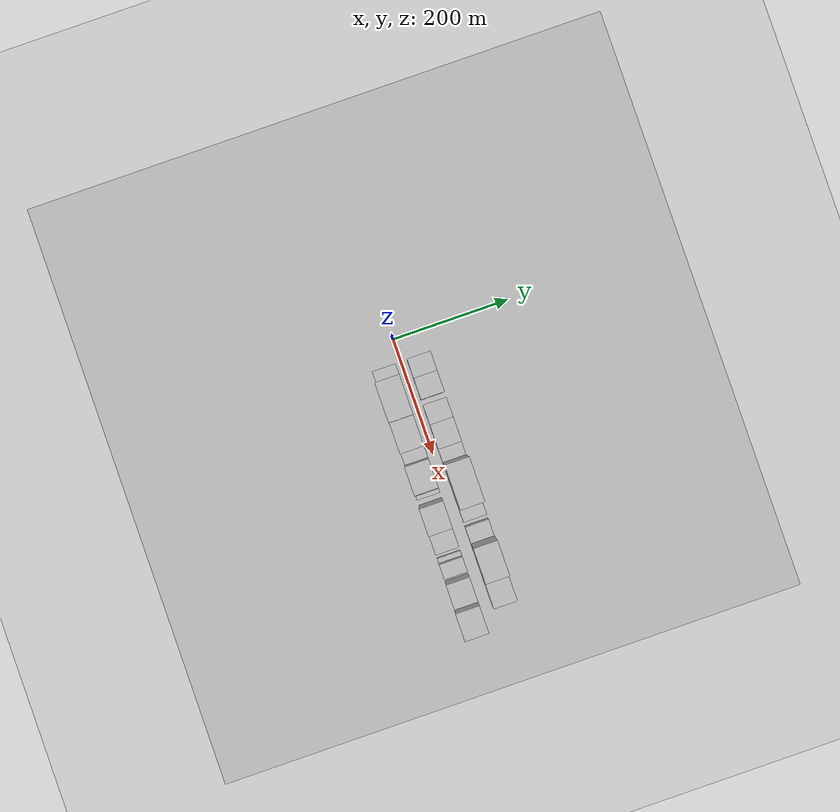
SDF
<?xml version="1.0" encoding="utf-8"?>

<sdf version="1.6">

   <world name="default">

      <gui fullscreen="0">

         <camera name="user_camera">

            <pose>-15 0 4.57585 0 0 0</pose>

            <view_controller>orbit</view_controller>

         </camera>

      </gui>

      <scene>

         <sky>

           <clouds>

             <speed>12</speed>

           </clouds>

         </sky>

         <ambient>0.4 0.4 0.4 1</ambient>

         <background>0.7 0.7 0.7 1</background>

         <shadows>1</shadows>

      </scene>

      <gravity>0 0 -9.8066</gravity>

      <magnetic_field>6e-06 2.3e-05 -4.2e-05</magnetic_field>

      <physics default="0" name="default_physics" type="ode">

         <ode>

            <solver>

               <type>quick</type>

               <iters>10</iters>

               <sor>1.0</sor>

               <use_dynamic_moi_rescaling>0</use_dynamic_moi_rescaling>

            </solver>

            <constraints>

               <cfm>0</cfm>

               <erp>0.2</erp>

               <contact_max_correcting_vel>100</contact_max_correcting_vel>

               <contact_surface_layer>0.001</contact_surface_layer>

            </constraints>

         </ode>

         <max_step_size>0.004</max_step_size>

         <real_time_factor>1</real_time_factor>

         <real_time_update_rate>250</real_time_update_rate>

      </physics>

      <light name="sun" type="directional">

         <cast_shadows>1</cast_shadows>

         <pose>0 0 10 0 0 0</pose>

         <diffuse>0.8 0.8 0.8 1</diffuse>

         <specular>0.2 0.2 0.2 1</specular>

         <attenuation>

            <range>1000</range>

            <constant>0.9</constant>

            <linear>0.01</linear>

            <quadratic>0.001</quadratic>

         </attenuation>

         <direction>-0.5 0.1 -0.9</direction>

      </light>

      <include>

         <name>ground_plane_1</name>

         <uri>model://HANNAS_ground_plane</uri>

         <pose>0 0 0  0 0 0</pose>

      </include>

      <include>

         <name>ground_plane_2</name>

         <uri>model://HANNAS_ground_plane</uri>

         <pose>100 0 0  0 0 0</pose>

      </include>

      <model name="building_1">

         <static>1</static>

         <pose frame="">56.5214 30.0000 0 0.000000 0.000000 1.570796</pose>

         <link name="link">

            <pose frame="">0 0 33.00 0 0 0</pose>

            <collision name="collision">

               <geometry>

                  <box>

                     <size>40.0000 33.0428 66.0000</size>

                  </box>

               </geometry>

               <max_contacts>10</max_contacts>

               <surface>

                  <contact>

                     <ode/>

                  </contact>

                  <bounce/>

                  <friction>

                     <torsional>

                        <ode/>

                     </torsional>

                     <ode/>

                  </friction>

               </surface>

            </collision>

            <visual name="visual">

               <cast_shadows>0</cast_shadows>

               <geometry>

                  <box>

                     <size>40.0000 33.0428 66.0000</size>

                  </box>

               </geometry>

               <material>

                  <script>

                     <uri>model://HANNAS_wall/materials/scripts</uri>

                     <uri>model://HANNAS_wall/materials/textures</uri>

                     <name>vrc/HANNAS_wall</name>

                  </script>

               </material>

            </visual>

            <self_collide>0</self_collide>

            <enable_wind>0</enable_wind>

            <kinematic>0</kinematic>

         </link>

      </model>

      <model name="building_2">

         <static>1</static>

         <pose frame="">91.2987 30.0000 0 0.000000 0.000000 1.570796</pose>

         <link name="link">

            <pose frame="">0 0 34.50 0 0 0</pose>

            <collision name="collision">

               <geometry>

                  <box>

                     <size>40.0000 36.5118 69.0000</size>

                  </box>

               </geometry>

               <max_contacts>10</max_contacts>

               <surface>

                  <contact>

                     <ode/>

                  </contact>

                  <bounce/>

                  <friction>

                     <torsional>

                        <ode/>

                     </torsional>

                     <ode/>

                  </friction>

               </surface>

            </collision>

            <visual name="visual">

               <cast_shadows>0</cast_shadows>

               <geometry>

                  <box>

                     <size>40.0000 36.5118 69.0000</size>

                  </box>

               </geometry>

               <material>

                  <script>

                     <uri>model://HANNAS_wall/materials/scripts</uri>

                     <uri>model://HANNAS_wall/materials/textures</uri>

                     <name>vrc/HANNAS_wall</name>

                  </script>

               </material>

            </visual>

            <self_collide>0</self_collide>

            <enable_wind>0</enable_wind>

            <kinematic>0</kinematic>

         </link>

      </model>

      <model name="building_3">

         <static>1</static>

         <pose frame="">135.4529 30.0000 0 0.000000 0.000000 1.570796</pose>

         <link name="link">

            <pose frame="">0 0 31.50 0 0 0</pose>

            <collision name="collision">

               <geometry>

                  <box>

                     <size>40.0000 33.7965 63.0000</size>

                  </box>

               </geometry>

               <max_contacts>10</max_contacts>

               <surface>

                  <contact>

                     <ode/>

                  </contact>

                  <bounce/>

                  <friction>

                     <torsional>

                        <ode/>

                     </torsional>

                     <ode/>

                  </friction>

               </surface>

            </collision>

            <visual name="visual">

               <cast_shadows>0</cast_shadows>

               <geometry>

                  <box>

                     <size>40.0000 33.7965 63.0000</size>

                  </box>

               </geometry>

               <material>

                  <script>

                     <uri>model://HANNAS_wall/materials/scripts</uri>

                     <uri>model://HANNAS_wall/materials/textures</uri>

                     <name>vrc/HANNAS_wall</name>

                  </script>

               </material>

            </visual>

            <self_collide>0</self_collide>

            <enable_wind>0</enable_wind>

            <kinematic>0</kinematic>

         </link>

      </model>

      <model name="building_4">

         <static>1</static>

         <pose frame="">173.2108 30.0000 0 0.000000 0.000000 1.570796</pose>

         <link name="link">

            <pose frame="">0 0 36.00 0 0 0</pose>

            <collision name="collision">

               <geometry>

                  <box>

                     <size>40.0000 41.7194 72.0000</size>

                  </box>

               </geometry>

               <max_contacts>10</max_contacts>

               <surface>

                  <contact>

                     <ode/>

                  </contact>

                  <bounce/>

                  <friction>

                     <torsional>

                        <ode/>

                     </torsional>

                     <ode/>

                  </friction>

               </surface>

            </collision>

            <visual name="visual">

               <cast_shadows>0</cast_shadows>

               <geometry>

                  <box>

                     <size>40.0000 41.7194 72.0000</size>

                  </box>

               </geometry>

               <material>

                  <script>

                     <uri>model://HANNAS_wall/materials/scripts</uri>

                     <uri>model://HANNAS_wall/materials/textures</uri>

                     <name>vrc/HANNAS_wall</name>

                  </script>

               </material>

            </visual>

            <self_collide>0</self_collide>

            <enable_wind>0</enable_wind>

            <kinematic>0</kinematic>

         </link>

      </model>

      <model name="building_5">

         <static>1</static>

         <pose frame="">205.6619 30.0000 0 0.000000 0.000000 1.570796</pose>

         <link name="link">

            <pose frame="">0 0 21.00 0 0 0</pose>

            <collision name="collision">

               <geometry>

                  <box>

                     <size>40.0000 23.1827 42.0000</size>

                  </box>

               </geometry>

               <max_contacts>10</max_contacts>

               <surface>

                  <contact>

                     <ode/>

                  </contact>

                  <bounce/>

                  <friction>

                     <torsional>

                        <ode/>

                     </torsional>

                     <ode/>

                  </friction>

               </surface>

            </collision>

            <visual name="visual">

               <cast_shadows>0</cast_shadows>

               <geometry>

                  <box>

                     <size>40.0000 23.1827 42.0000</size>

                  </box>

               </geometry>

               <material>

                  <script>

                     <uri>model://HANNAS_wall/materials/scripts</uri>

                     <uri>model://HANNAS_wall/materials/textures</uri>

                     <name>vrc/HANNAS_wall</name>

                  </script>

               </material>

            </visual>

            <self_collide>0</self_collide>

            <enable_wind>0</enable_wind>

            <kinematic>0</kinematic>

         </link>

      </model>

      <model name="building_6">

         <static>1</static>

         <pose frame="">253.6952 30.0000 0 0.000000 0.000000 1.570796</pose>

         <link name="link">

            <pose frame="">0 0 112.50 0 0 0</pose>

            <collision name="collision">

               <geometry>

                  <box>

                     <size>40.0000 72.8837 225.0000</size>

                  </box>

               </geometry>

               <max_contacts>10</max_contacts>

               <surface>

                  <contact>

                     <ode/>

                  </contact>

                  <bounce/>

                  <friction>

                     <torsional>

                        <ode/>

                     </torsional>

                     <ode/>

                  </friction>

               </surface>

            </collision>

            <visual name="visual">

               <cast_shadows>0</cast_shadows>

               <geometry>

                  <box>

                     <size>40.0000 72.8837 225.0000</size>

                  </box>

               </geometry>

               <material>

                  <script>

                     <uri>model://HANNAS_wall/materials/scripts</uri>

                     <uri>model://HANNAS_wall/materials/textures</uri>

                     <name>vrc/HANNAS_wall</name>

                  </script>

               </material>

            </visual>

            <self_collide>0</self_collide>

            <enable_wind>0</enable_wind>

            <kinematic>0</kinematic>

         </link>

      </model>

      <model name="building_7">

         <static>1</static>

         <pose frame="">308.0705 30.0000 0 0.000000 0.000000 1.570796</pose>

         <link name="link">

            <pose frame="">0 0 21.00 0 0 0</pose>

            <collision name="collision">

               <geometry>

                  <box>

                     <size>40.0000 23.8669 42.0000</size>

                  </box>

               </geometry>

               <max_contacts>10</max_contacts>

               <surface>

                  <contact>

                     <ode/>

                  </contact>

                  <bounce/>

                  <friction>

                     <torsional>

                        <ode/>

                     </torsional>

                     <ode/>

                  </friction>

               </surface>

            </collision>

            <visual name="visual">

               <cast_shadows>0</cast_shadows>

               <geometry>

                  <box>

                     <size>40.0000 23.8669 42.0000</size>

                  </box>

               </geometry>

               <material>

                  <script>

                     <uri>model://HANNAS_wall/materials/scripts</uri>

                     <uri>model://HANNAS_wall/materials/textures</uri>

                     <name>vrc/HANNAS_wall</name>

                  </script>

               </material>

            </visual>

            <self_collide>0</self_collide>

            <enable_wind>0</enable_wind>

            <kinematic>0</kinematic>

         </link>

      </model>

      <model name="building_8">

         <static>1</static>

         <pose frame="">342.1135 30.0000 0 0.000000 0.000000 1.570796</pose>

         <link name="link">

            <pose frame="">0 0 24.00 0 0 0</pose>

            <collision name="collision">

               <geometry>

                  <box>

                     <size>40.0000 28.2193 48.0000</size>

                  </box>

               </geometry>

               <max_contacts>10</max_contacts>

               <surface>

                  <contact>

                     <ode/>

                  </contact>

                  <bounce/>

                  <friction>

                     <torsional>

                        <ode/>

                     </torsional>

                     <ode/>

                  </friction>

               </surface>

            </collision>

            <visual name="visual">

               <cast_shadows>0</cast_shadows>

               <geometry>

                  <box>

                     <size>40.0000 28.2193 48.0000</size>

                  </box>

               </geometry>

               <material>

                  <script>

                     <uri>model://HANNAS_wall/materials/scripts</uri>

                     <uri>model://HANNAS_wall/materials/textures</uri>

                     <name>vrc/HANNAS_wall</name>

                  </script>

               </material>

            </visual>

            <self_collide>0</self_collide>

            <enable_wind>0</enable_wind>

            <kinematic>0</kinematic>

         </link>

      </model>

      <model name="building_9">

         <static>1</static>

         <pose frame="">385.6318 30.0000 0 0.000000 0.000000 1.570796</pose>

         <link name="link">

            <pose frame="">0 0 82.50 0 0 0</pose>

            <collision name="collision">

               <geometry>

                  <box>

                     <size>40.0000 58.8174 165.0000</size>

                  </box>

               </geometry>

               <max_contacts>10</max_contacts>

               <surface>

                  <contact>

                     <ode/>

                  </contact>

                  <bounce/>

                  <friction>

                     <torsional>

                        <ode/>

                     </torsional>

                     <ode/>

                  </friction>

               </surface>

            </collision>

            <visual name="visual">

               <cast_shadows>0</cast_shadows>

               <geometry>

                  <box>

                     <size>40.0000 58.8174 165.0000</size>

                  </box>

               </geometry>

               <material>

                  <script>

                     <uri>model://HANNAS_wall/materials/scripts</uri>

                     <uri>model://HANNAS_wall/materials/textures</uri>

                     <name>vrc/HANNAS_wall</name>

                  </script>

               </material>

            </visual>

            <self_collide>0</self_collide>

            <enable_wind>0</enable_wind>

            <kinematic>0</kinematic>

         </link>

      </model>

      <model name="building_10">

         <static>1</static>

         <pose frame="">439.2634 30.0000 0 0.000000 0.000000 1.570796</pose>

         <link name="link">

            <pose frame="">0 0 45.00 0 0 0</pose>

            <collision name="collision">

               <geometry>

                  <box>

                     <size>40.0000 48.4457 90.0000</size>

                  </box>

               </geometry>

               <max_contacts>10</max_contacts>

               <surface>

                  <contact>

                     <ode/>

                  </contact>

                  <bounce/>

                  <friction>

                     <torsional>

                        <ode/>

                     </torsional>

                     <ode/>

                  </friction>

               </surface>

            </collision>

            <visual name="visual">

               <cast_shadows>0</cast_shadows>

               <geometry>

                  <box>

                     <size>40.0000 48.4457 90.0000</size>

                  </box>

               </geometry>

               <material>

                  <script>

                     <uri>model://HANNAS_wall/materials/scripts</uri>

                     <uri>model://HANNAS_wall/materials/textures</uri>

                     <name>vrc/HANNAS_wall</name>

                  </script>

               </material>

            </visual>

            <self_collide>0</self_collide>

            <enable_wind>0</enable_wind>

            <kinematic>0</kinematic>

         </link>

      </model>

      <model name="building_11">

         <static>1</static>

         <pose frame="">51.4563 -30.0000 0 0.000000 0.000000 1.570796</pose>

         <link name="link">

            <pose frame="">0 0 19.50 0 0 0</pose>

            <collision name="collision">

               <geometry>

                  <box>

                     <size>40.0000 22.9126 39.0000</size>

                  </box>

               </geometry>

               <max_contacts>10</max_contacts>

               <surface>

                  <contact>

                     <ode/>

                  </contact>

                  <bounce/>

                  <friction>

                     <torsional>

                        <ode/>

                     </torsional>

                     <ode/>

                  </friction>

               </surface>

            </collision>

            <visual name="visual">

               <cast_shadows>0</cast_shadows>

               <geometry>

                  <box>

                     <size>40.0000 22.9126 39.0000</size>

                  </box>

               </geometry>

               <material>

                  <script>

                     <uri>model://HANNAS_wall/materials/scripts</uri>

                     <uri>model://HANNAS_wall/materials/textures</uri>

                     <name>vrc/HANNAS_wall</name>

                  </script>

               </material>

            </visual>

            <self_collide>0</self_collide>

            <enable_wind>0</enable_wind>

            <kinematic>0</kinematic>

         </link>

      </model>

      <model name="building_12">

         <static>1</static>

         <pose frame="">95.6367 -30.0000 0 0.000000 0.000000 1.570796</pose>

         <link name="link">

            <pose frame="">0 0 108.00 0 0 0</pose>

            <collision name="collision">

               <geometry>

                  <box>

                     <size>40.0000 65.4483 216.0000</size>

                  </box>

               </geometry>

               <max_contacts>10</max_contacts>

               <surface>

                  <contact>

                     <ode/>

                  </contact>

                  <bounce/>

                  <friction>

                     <torsional>

                        <ode/>

                     </torsional>

                     <ode/>

                  </friction>

               </surface>

            </collision>

            <visual name="visual">

               <cast_shadows>0</cast_shadows>

               <geometry>

                  <box>

                     <size>40.0000 65.4483 216.0000</size>

                  </box>

               </geometry>

               <material>

                  <script>

                     <uri>model://HANNAS_wall/materials/scripts</uri>

                     <uri>model://HANNAS_wall/materials/textures</uri>

                     <name>vrc/HANNAS_wall</name>

                  </script>

               </material>

            </visual>

            <self_collide>0</self_collide>

            <enable_wind>0</enable_wind>

            <kinematic>0</kinematic>

         </link>

      </model>

      <model name="building_13">

         <static>1</static>

         <pose frame="">154.3303 -30.0000 0 0.000000 0.000000 1.570796</pose>

         <link name="link">

            <pose frame="">0 0 67.50 0 0 0</pose>

            <collision name="collision">

               <geometry>

                  <box>

                     <size>40.0000 51.9388 135.0000</size>

                  </box>

               </geometry>

               <max_contacts>10</max_contacts>

               <surface>

                  <contact>

                     <ode/>

                  </contact>

                  <bounce/>

                  <friction>

                     <torsional>

                        <ode/>

                     </torsional>

                     <ode/>

                  </friction>

               </surface>

            </collision>

            <visual name="visual">

               <cast_shadows>0</cast_shadows>

               <geometry>

                  <box>

                     <size>40.0000 51.9388 135.0000</size>

                  </box>

               </geometry>

               <material>

                  <script>

                     <uri>model://HANNAS_wall/materials/scripts</uri>

                     <uri>model://HANNAS_wall/materials/textures</uri>

                     <name>vrc/HANNAS_wall</name>

                  </script>

               </material>

            </visual>

            <self_collide>0</self_collide>

            <enable_wind>0</enable_wind>

            <kinematic>0</kinematic>

         </link>

      </model>

      <model name="building_14">

         <static>1</static>

         <pose frame="">190.9048 -30.0000 0 0.000000 0.000000 1.570796</pose>

         <link name="link">

            <pose frame="">0 0 18.00 0 0 0</pose>

            <collision name="collision">

               <geometry>

                  <box>

                     <size>40.0000 21.2103 36.0000</size>

                  </box>

               </geometry>

               <max_contacts>10</max_contacts>

               <surface>

                  <contact>

                     <ode/>

                  </contact>

                  <bounce/>

                  <friction>

                     <torsional>

                        <ode/>

                     </torsional>

                     <ode/>

                  </friction>

               </surface>

            </collision>

            <visual name="visual">

               <cast_shadows>0</cast_shadows>

               <geometry>

                  <box>

                     <size>40.0000 21.2103 36.0000</size>

                  </box>

               </geometry>

               <material>

                  <script>

                     <uri>model://HANNAS_wall/materials/scripts</uri>

                     <uri>model://HANNAS_wall/materials/textures</uri>

                     <name>vrc/HANNAS_wall</name>

                  </script>

               </material>

            </visual>

            <self_collide>0</self_collide>

            <enable_wind>0</enable_wind>

            <kinematic>0</kinematic>

         </link>

      </model>

      <model name="building_15">

         <static>1</static>

         <pose frame="">225.5655 -30.0000 0 0.000000 0.000000 1.570796</pose>

         <link name="link">

            <pose frame="">0 0 73.50 0 0 0</pose>

            <collision name="collision">

               <geometry>

                  <box>

                     <size>40.0000 48.1112 147.0000</size>

                  </box>

               </geometry>

               <max_contacts>10</max_contacts>

               <surface>

                  <contact>

                     <ode/>

                  </contact>

                  <bounce/>

                  <friction>

                     <torsional>

                        <ode/>

                     </torsional>

                     <ode/>

                  </friction>

               </surface>

            </collision>

            <visual name="visual">

               <cast_shadows>0</cast_shadows>

               <geometry>

                  <box>

                     <size>40.0000 48.1112 147.0000</size>

                  </box>

               </geometry>

               <material>

                  <script>

                     <uri>model://HANNAS_wall/materials/scripts</uri>

                     <uri>model://HANNAS_wall/materials/textures</uri>

                     <name>vrc/HANNAS_wall</name>

                  </script>

               </material>

            </visual>

            <self_collide>0</self_collide>

            <enable_wind>0</enable_wind>

            <kinematic>0</kinematic>

         </link>

      </model>

      <model name="building_16">

         <static>1</static>

         <pose frame="">259.0940 -30.0000 0 0.000000 0.000000 1.570796</pose>

         <link name="link">

            <pose frame="">0 0 7.50 0 0 0</pose>

            <collision name="collision">

               <geometry>

                  <box>

                     <size>40.0000 6.9457 15.0000</size>

                  </box>

               </geometry>

               <max_contacts>10</max_contacts>

               <surface>

                  <contact>

                     <ode/>

                  </contact>

                  <bounce/>

                  <friction>

                     <torsional>

                        <ode/>

                     </torsional>

                     <ode/>

                  </friction>

               </surface>

            </collision>

            <visual name="visual">

               <cast_shadows>0</cast_shadows>

               <geometry>

                  <box>

                     <size>40.0000 6.9457 15.0000</size>

                  </box>

               </geometry>

               <material>

                  <script>

                     <uri>model://HANNAS_wall/materials/scripts</uri>

                     <uri>model://HANNAS_wall/materials/textures</uri>

                     <name>vrc/HANNAS_wall</name>

                  </script>

               </material>

            </visual>

            <self_collide>0</self_collide>

            <enable_wind>0</enable_wind>

            <kinematic>0</kinematic>

         </link>

      </model>

      <model name="building_17">

         <static>1</static>

         <pose frame="">294.4549 -30.0000 0 0.000000 0.000000 1.570796</pose>

         <link name="link">

            <pose frame="">0 0 70.50 0 0 0</pose>

            <collision name="collision">

               <geometry>

                  <box>

                     <size>40.0000 45.7761 141.0000</size>

                  </box>

               </geometry>

               <max_contacts>10</max_contacts>

               <surface>

                  <contact>

                     <ode/>

                  </contact>

                  <bounce/>

                  <friction>

                     <torsional>

                        <ode/>

                     </torsional>

                     <ode/>

                  </friction>

               </surface>

            </collision>

            <visual name="visual">

               <cast_shadows>0</cast_shadows>

               <geometry>

                  <box>

                     <size>40.0000 45.7761 141.0000</size>

                  </box>

               </geometry>

               <material>

                  <script>

                     <uri>model://HANNAS_wall/materials/scripts</uri>

                     <uri>model://HANNAS_wall/materials/textures</uri>

                     <name>vrc/HANNAS_wall</name>

                  </script>

               </material>

            </visual>

            <self_collide>0</self_collide>

            <enable_wind>0</enable_wind>

            <kinematic>0</kinematic>

         </link>

      </model>

      <model name="building_18">

         <static>1</static>

         <pose frame="">337.1274 -30.0000 0 0.000000 0.000000 1.570796</pose>

         <link name="link">

            <pose frame="">0 0 31.50 0 0 0</pose>

            <collision name="collision">

               <geometry>

                  <box>

                     <size>40.0000 33.5688 63.0000</size>

                  </box>

               </geometry>

               <max_contacts>10</max_contacts>

               <surface>

                  <contact>

                     <ode/>

                  </contact>

                  <bounce/>

                  <friction>

                     <torsional>

                        <ode/>

                     </torsional>

                     <ode/>

                  </friction>

               </surface>

            </collision>

            <visual name="visual">

               <cast_shadows>0</cast_shadows>

               <geometry>

                  <box>

                     <size>40.0000 33.5688 63.0000</size>

                  </box>

               </geometry>

               <material>

                  <script>

                     <uri>model://HANNAS_wall/materials/scripts</uri>

                     <uri>model://HANNAS_wall/materials/textures</uri>

                     <name>vrc/HANNAS_wall</name>

                  </script>

               </material>

            </visual>

            <self_collide>0</self_collide>

            <enable_wind>0</enable_wind>

            <kinematic>0</kinematic>

         </link>

      </model>

      <model name="building_19">

         <static>1</static>

         <pose frame="">367.1387 -30.0000 0 0.000000 0.000000 1.570796</pose>

         <link name="link">

            <pose frame="">0 0 9.00 0 0 0</pose>

            <collision name="collision">

               <geometry>

                  <box>

                     <size>40.0000 8.4537 18.0000</size>

                  </box>

               </geometry>

               <max_contacts>10</max_contacts>

               <surface>

                  <contact>

                     <ode/>

                  </contact>

                  <bounce/>

                  <friction>

                     <torsional>

                        <ode/>

                     </torsional>

                     <ode/>

                  </friction>

               </surface>

            </collision>

            <visual name="visual">

               <cast_shadows>0</cast_shadows>

               <geometry>

                  <box>

                     <size>40.0000 8.4537 18.0000</size>

                  </box>

               </geometry>

               <material>

                  <script>

                     <uri>model://HANNAS_wall/materials/scripts</uri>

                     <uri>model://HANNAS_wall/materials/textures</uri>

                     <name>vrc/HANNAS_wall</name>

                  </script>

               </material>

            </visual>

            <self_collide>0</self_collide>

            <enable_wind>0</enable_wind>

            <kinematic>0</kinematic>

         </link>

      </model>

      <model name="building_20">

         <static>1</static>

         <pose frame="">384.1922 -30.0000 0 0.000000 0.000000 1.570796</pose>

         <link name="link">

            <pose frame="">0 0 24.00 0 0 0</pose>

            <collision name="collision">

               <geometry>

                  <box>

                     <size>40.0000 25.6532 48.0000</size>

                  </box>

               </geometry>

               <max_contacts>10</max_contacts>

               <surface>

                  <contact>

                     <ode/>

                  </contact>

                  <bounce/>

                  <friction>

                     <torsional>

                        <ode/>

                     </torsional>

                     <ode/>

                  </friction>

               </surface>

            </collision>

            <visual name="visual">

               <cast_shadows>0</cast_shadows>

               <geometry>

                  <box>

                     <size>40.0000 25.6532 48.0000</size>

                  </box>

               </geometry>

               <material>

                  <script>

                     <uri>model://HANNAS_wall/materials/scripts</uri>

                     <uri>model://HANNAS_wall/materials/textures</uri>

                     <name>vrc/HANNAS_wall</name>

                  </script>

               </material>

            </visual>

            <self_collide>0</self_collide>

            <enable_wind>0</enable_wind>

            <kinematic>0</kinematic>

         </link>

      </model>

      <model name="building_21">

         <static>1</static>

         <pose frame="">424.1243 -30.0000 0 0.000000 0.000000 1.570796</pose>

         <link name="link">

            <pose frame="">0 0 42.00 0 0 0</pose>

            <collision name="collision">

               <geometry>

                  <box>

                     <size>40.0000 42.2110 84.0000</size>

                  </box>

               </geometry>

               <max_contacts>10</max_contacts>

               <surface>

                  <contact>

                     <ode/>

                  </contact>

                  <bounce/>

                  <friction>

                     <torsional>

                        <ode/>

                     </torsional>

                     <ode/>

                  </friction>

               </surface>

            </collision>

            <visual name="visual">

               <cast_shadows>0</cast_shadows>

               <geometry>

                  <box>

                     <size>40.0000 42.2110 84.0000</size>

                  </box>

               </geometry>

               <material>

                  <script>

                     <uri>model://HANNAS_wall/materials/scripts</uri>

                     <uri>model://HANNAS_wall/materials/textures</uri>

                     <name>vrc/HANNAS_wall</name>

                  </script>

               </material>

            </visual>

            <self_collide>0</self_collide>

            <enable_wind>0</enable_wind>

            <kinematic>0</kinematic>

         </link>

      </model>

      <model name="building_22">

         <static>1</static>

         <pose frame="">468.2166 -30.0000 0 0.000000 0.000000 1.570796</pose>

         <link name="link">

            <pose frame="">0 0 72.00 0 0 0</pose>

            <collision name="collision">

               <geometry>

                  <box>

                     <size>40.0000 45.9736 144.0000</size>

                  </box>

               </geometry>

               <max_contacts>10</max_contacts>

               <surface>

                  <contact>

                     <ode/>

                  </contact>

                  <bounce/>

                  <friction>

                     <torsional>

                        <ode/>

                     </torsional>

                     <ode/>

                  </friction>

               </surface>

            </collision>

            <visual name="visual">

               <cast_shadows>0</cast_shadows>

               <geometry>

                  <box>

                     <size>40.0000 45.9736 144.0000</size>

                  </box>

               </geometry>

               <material>

                  <script>

                     <uri>model://HANNAS_wall/materials/scripts</uri>

                     <uri>model://HANNAS_wall/materials/textures</uri>

                     <name>vrc/HANNAS_wall</name>

                  </script>

               </material>

            </visual>

            <self_collide>0</self_collide>

            <enable_wind>0</enable_wind>

            <kinematic>0</kinematic>

         </link>

      </model>

   </world>

</sdf>

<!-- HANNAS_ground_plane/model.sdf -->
<sdf version="1.4">
<model name="HANNAS_ground_plane">
  <static>true</static>
    <link name="link">
      <collision name="collision">
        <geometry>
          <plane>
            <normal>0 0 1</normal>
            <size>1000 1000</size>
          </plane>
        </geometry>
        <surface>
          <friction>
            <ode>
              <mu>100</mu>
              <mu2>50</mu2>
            </ode>
          </friction>
        </surface>
      </collision>
      <visual name="visual">
        <cast_shadows>false</cast_shadows>
        <geometry>
          <plane>
            <normal>0 0 1</normal>
            <size>1000 1000</size>
          </plane>
        </geometry>
        <material>
          <script>
            <uri>model://HANNAS_ground_plane/materials/scripts/HANNAS_ground_plane.material</uri>
	    <uri>model://HANNAS_ground_plane/materials/textures</uri>
            <name>HANNASGroundPlane/Image</name>
          </script>
        </material>
      </visual>
    </link>
  </model>
</sdf>
